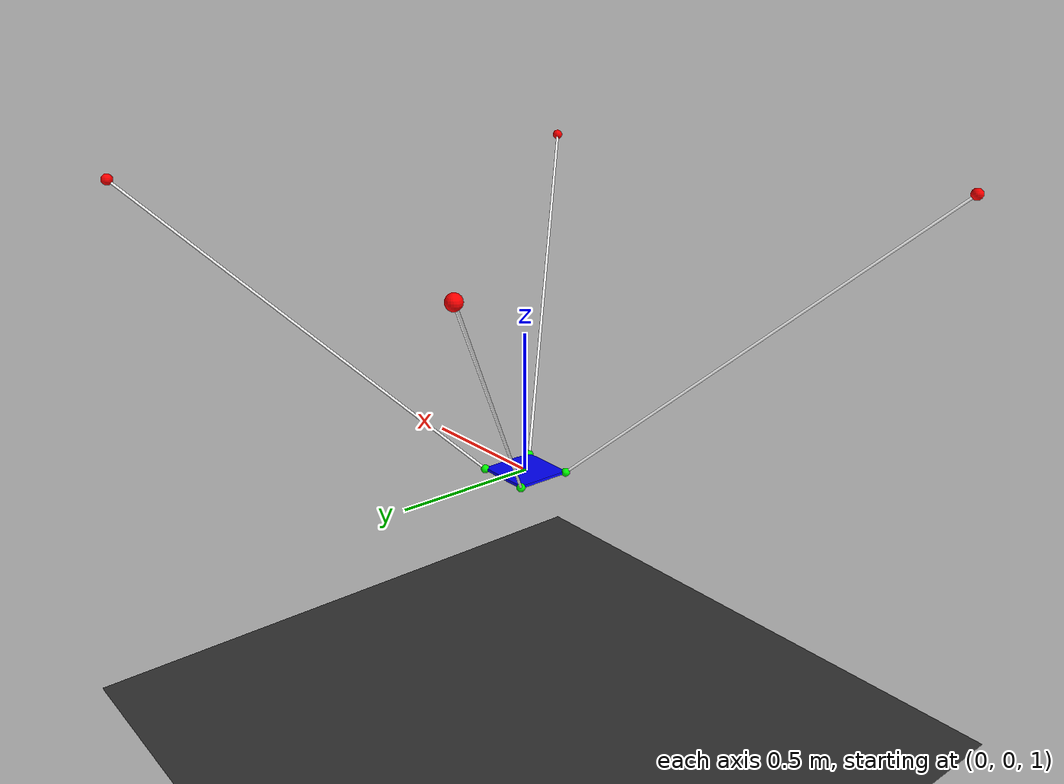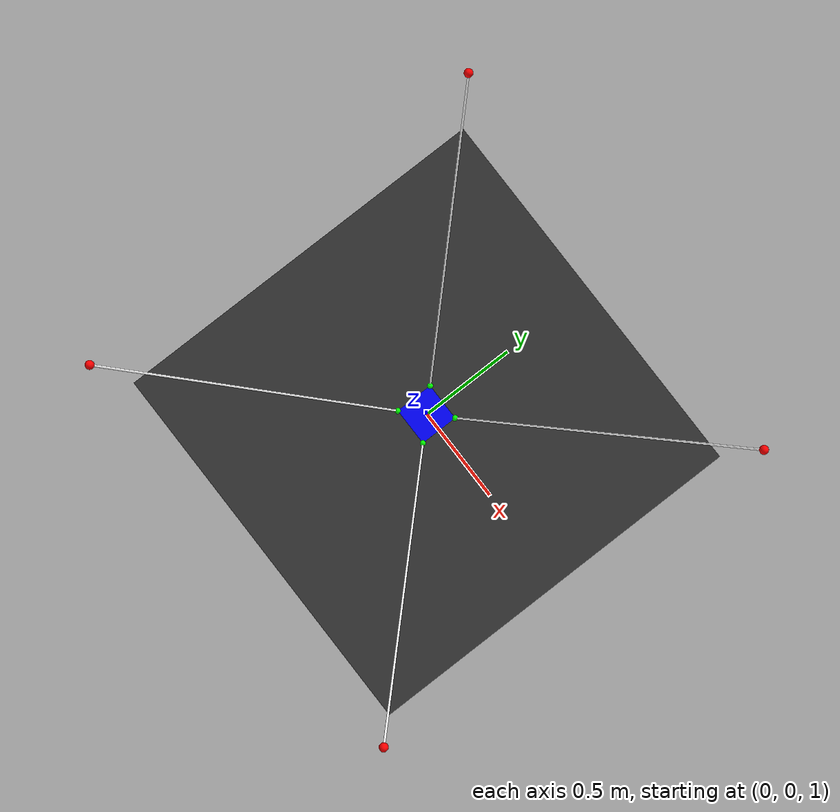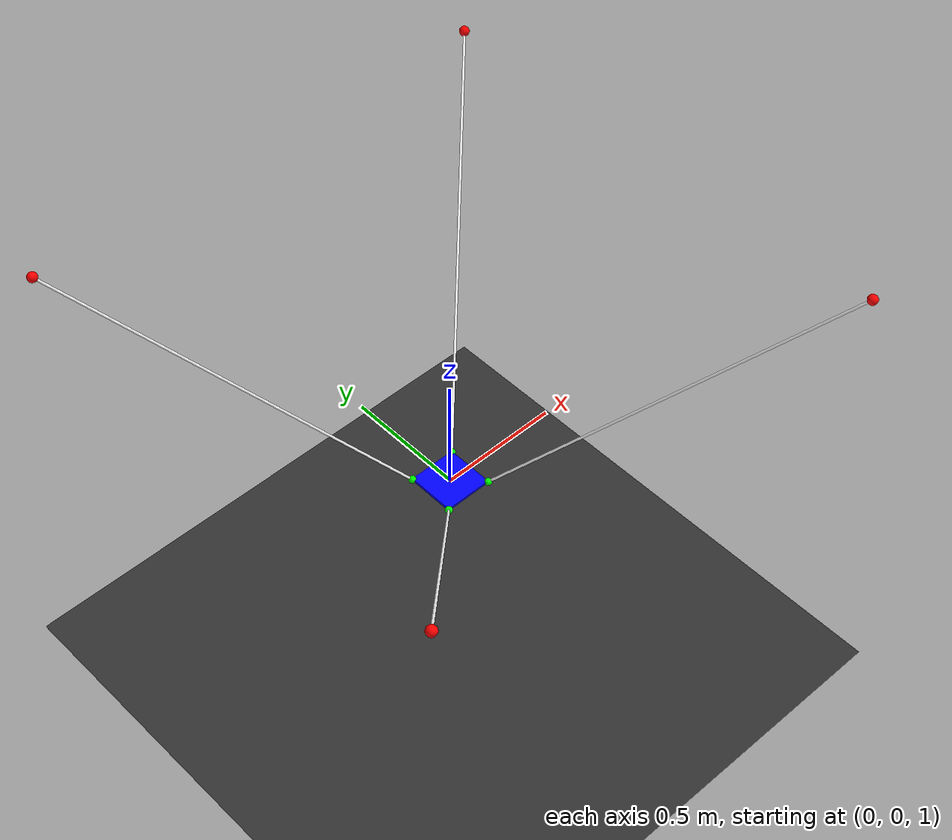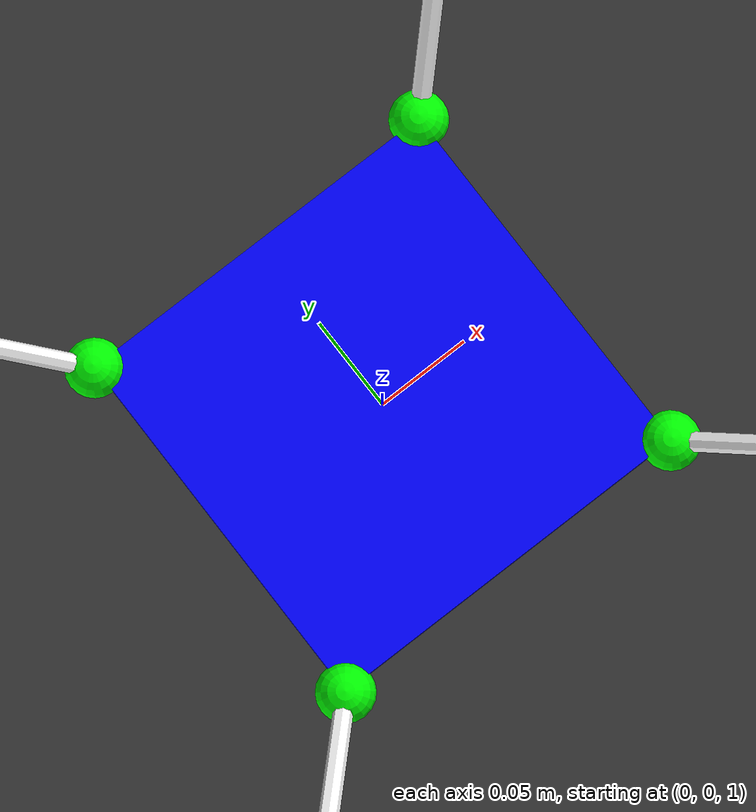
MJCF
<mujoco model="4_cable_robot">
    <compiler angle="radian"/>

    <option gravity="0 0 -9.81"/>

    <default>
        <tendon width="0.005" rgba="1 1 1 1"/>
        <position kp="5000" kv="50"/>
    </default>

    <worldbody>
        <light pos="0 0 5" dir="0 0 -1" diffuse="0.8 0.8 0.8"/>
        <geom type="plane" size="3 3 0.1" rgba="0.2 0.2 0.2 1"/>

        <site name="anchor_0" pos="1.0 1.0 2.0" size="0.02" rgba="1 0 0 1"/>
        <site name="anchor_1" pos="-1.0 1.0 2.0" size="0.02" rgba="1 0 0 1"/>
        <site name="anchor_2" pos="-1.0 -1.0 2.0" size="0.02" rgba="1 0 0 1"/>
        <site name="anchor_3" pos="1.0 -1.0 2.0" size="0.02" rgba="1 0 0 1"/>

        <body name="end_effector" pos="0 0 1.0">
            <freejoint/>
            <geom type="box" size="0.1 0.1 0.005" mass="0.1" rgba="0 0 1 1"/>

            <site name="platform_0" pos="0.1 0.1 0" size="0.015" rgba="0 1 0 1"/>
            <site name="platform_1" pos="-0.1 0.1 0" size="0.015" rgba="0 1 0 1"/>
            <site name="platform_2" pos="-0.1 -0.1 0" size="0.015" rgba="0 1 0 1"/>
            <site name="platform_3" pos="0.1 -0.1 0" size="0.015" rgba="0 1 0 1"/>
        </body>
    </worldbody>

    <tendon>
        <spatial name="cable_0"><site site="anchor_0"/><site site="platform_0"/></spatial>
        <spatial name="cable_1"><site site="anchor_1"/><site site="platform_1"/></spatial>
        <spatial name="cable_2"><site site="anchor_2"/><site site="platform_2"/></spatial>
        <spatial name="cable_3"><site site="anchor_3"/><site site="platform_3"/></spatial>
    </tendon>

    <actuator>
        <position name="motor_0" tendon="cable_0" gear="0.02"/>
        <position name="motor_1" tendon="cable_1" gear="0.02"/>
        <position name="motor_2" tendon="cable_2" gear="0.02"/>
        <position name="motor_3" tendon="cable_3" gear="0.02"/>
    </actuator>
</mujoco>
